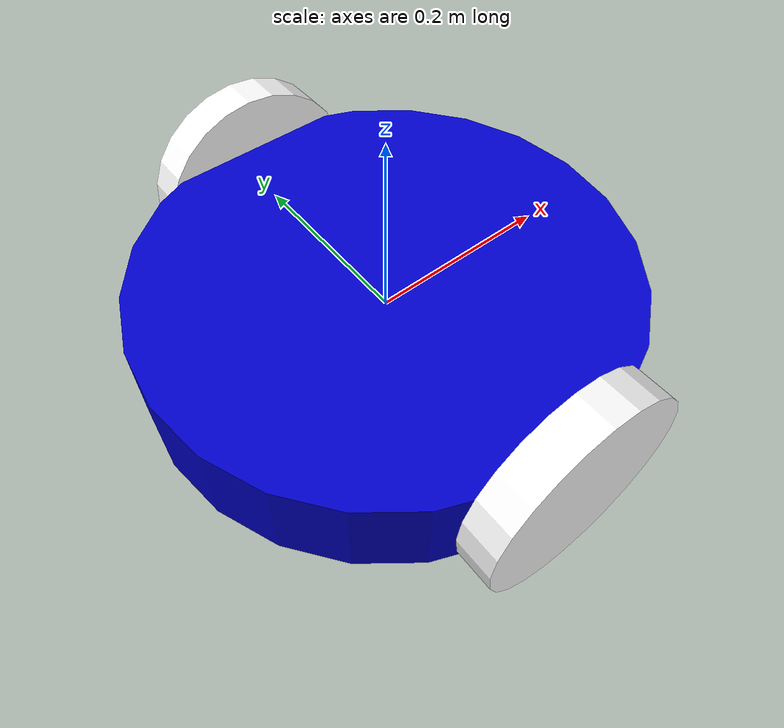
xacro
<?xml version="1.0"?>
<robot name="mp23" xmlns:xacro="http://www.ros.org/wiki/xacro">

	<xacro:property name="PI" value="3.1415926535897931"/>
	<xacro:property name="chassisHeight" value="0.1"/>
	<xacro:property name="chassisRadius" value="0.25"/>
	<xacro:property name="chassisMass" value="5"/>
	<xacro:property name="wheelHeight" value="0.04"/>
	<xacro:property name="wheelRadius" value="0.11"/>
	<xacro:property name="wheelPos" value="0.25"/>
	<xacro:property name="wheelMass" value="2.5"/>
	<xacro:property name="casterRadius" value="0.053"/>
	<xacro:property name="casterMass" value="0.5"/>

	<xacro:include filename="$(find mp23)/description/urdf/gazebo.xacro" />
	<xacro:include filename="$(find mp23)/description/urdf/materials.xacro" />
	<xacro:include filename="$(find mp23)/description/urdf/macros.xacro" />

<!--ADD CHASSIS-->																											<!--LINKS-->
	<link name="chassis">
		<pose> 0 0 0.1 0 0 0 </pose>
			<collision>
			<origin xyz="0 0 0" rpy="0 0 0"/>
			<geometry>
				<cylinder length="${chassisHeight}" radius="${chassisRadius}" />
			</geometry>
		</collision>

		<visual>
			<origin xyz="0 0 0" rpy="0 0 0"/>
			<geometry>
				<cylinder length="${chassisHeight}" radius="${chassisRadius}" />
			</geometry>
			<material name="blue"/>
		</visual>

		<inertial>
			<origin xyz="0 0 0" rpy="0 0 0"/>
			<mass value="${chassisMass}"/>
			<xacro:inertial_cylinder m="${chassisMass}" r="${chassisRadius}" h="${chassisHeight}"/>
		</inertial>
	</link>

<!--ADD WHEELS CASTER-->
	<joint name="fixed_f" type="fixed">
		<parent link="chassis"/>
		<child link="caster_wheel_f"/>
		<origin xyz="0.135 0.0 -0.047" rpy="${-PI/2} 0 0"/>
	</joint>

	<link name="caster_wheel_f">
		<collision>
			<origin xyz="0.01 0.01 0" rpy="0 0 0"/>
			<geometry>
				<sphere radius="${casterRadius}"/>
			</geometry>
		</collision>

		<visual>
			<origin xyz="0.01 0.01 0" rpy="0 0 0"/>
			<geometry>
				<sphere radius="${casterRadius}"/>
			</geometry>
			<material name="red"/>
		</visual>

		<inertial>
			<origin xyz="0.01 0.01 0" rpy="0 0 0"/>
			<mass value="${casterMass}"/>
			<xacro:inertial_sphere m="${casterMass}" r="${casterRadius}"/>
		</inertial>
		</link>

	<joint name="fixed_b" type="fixed">
		<parent link="chassis"/>
		<child link="caster_wheel_b"/>
		<origin xyz="-0.135 0.0 -0.047" rpy="${-PI/2} 0 0"/>
	</joint>

	<link name="caster_wheel_b">
		<collision>
			<origin xyz="0.01 0.01 0" rpy="0 0 0"/>
			<geometry>
				<sphere radius="${casterRadius}"/>
			</geometry>
		</collision>

		<visual>
			<origin xyz="0.01 0.01 0" rpy="0 0 0"/>
			<geometry>
				<sphere radius="${casterRadius}"/>
			</geometry>
			<material name="red"/>
		</visual>

		<inertial>
			<origin xyz="0.01 0.01 0" rpy="0 0 0"/>
			<mass value="${casterMass}"/>
			<xacro:inertial_sphere m="${casterMass}" r="${casterRadius}"/>
		</inertial>
		</link>

<!--ADD LEFT WHEEL-->
	<joint name="left_wheel_hinge" type="continuous">
		<parent link="chassis"/>
		<child link="left_wheel"/>
		<origin xyz="0 ${-0.5*2*chassisRadius} 0" rpy="0 0 0" />
		<axis xyz="0 1 0" rpy="0 0 0" />
		<limit effort="100" velocity="100"/>
		<joint_properties damping="0.0" friction="0.0"/>
	</joint>

	<link name="left_wheel">
		<collision>
			<origin xyz="0 0 0" rpy="0 ${PI/2} ${PI/2}" />
			<geometry>
				<cylinder length="${wheelHeight}" radius="${wheelRadius}"/>
			</geometry>
		</collision>

		<visual>
			<origin xyz="0 0 0" rpy="0 ${PI/2} ${PI/2}" />
			<geometry>
				<cylinder length="${wheelHeight}" radius="${wheelRadius}"/>
			</geometry>
			<material name="white"/>
		</visual>

		<inertial>
			<origin xyz="0 0 0" rpy="0 ${PI/2} ${PI/2}" />
			<mass value="${wheelMass}"/>
			<xacro:inertial_cylinder m="${wheelMass}" r="${wheelRadius}" h="${wheelHeight}"/>
		</inertial>
	</link>

	<transmission name="left_trans">
		<type>transmission_interface/SimpleTransmission</type>
		<joint name="left_wheel_hinge">
			<hardwareInterface>EffortJointInterface</hardwareInterface>
		</joint>

		<actuator name="leftMotor">
			<hardwareInterface>EffortJointInterface</hardwareInterface>
			<mechanicalReduction>10</mechanicalReduction>
		</actuator>
	</transmission>

<!--ADD RIGHT WHEEL-->
	<joint name="right_wheel_hinge" type="continuous">
		<parent link="chassis"/>
		<child link="right_wheel"/>
		<origin xyz="0 ${0.5 *2*chassisRadius} 0" rpy="0 0 0" />
		<axis xyz="0 1 0" rpy="0 0 0" />
		<limit effort="100" velocity="100"/>
		<joint_properties damping="0.0" friction="0.0"/>
	</joint>

	<link name="right_wheel">
		<collision>
			<origin xyz="0 0 0" rpy="0 ${PI/2} ${PI/2}" />
			<geometry>
				<cylinder length="${wheelHeight}" radius="${wheelRadius}"/>
			</geometry>
		</collision>

		<visual>
			<origin xyz="0 0 0" rpy="0 ${PI/2} ${PI/2}" />
			<geometry>
				<cylinder length="${wheelHeight}" radius="${wheelRadius}"/>
			</geometry>
			<material name="white"/>
		</visual>

		<inertial>
			<origin xyz="0 0 0" rpy="0 ${PI/2} ${PI/2}" />
			<mass value="${wheelMass}"/>
			<xacro:inertial_cylinder m="${wheelMass}" r="${wheelRadius}" h="${wheelHeight}"/>
		</inertial>
	</link>

	<transmission name="right_trans">
		<type>transmission_interface/SimpleTransmission</type>
		<joint name="right_wheel_hinge">
			<hardwareInterface>EffortJointInterface</hardwareInterface>
		</joint>

		<actuator name="rightMotor">
			<hardwareInterface>EffortJointInterface</hardwareInterface>
			<mechanicalReduction>10</mechanicalReduction>
		</actuator>
	</transmission>

</robot>

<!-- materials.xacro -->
<robot xmlns:xacro="http://www.ros.org/wiki/xacro">
    <material name="black">
        <color rgba="0.0 0.0 0.0 1.0"/>
    </material>

    <material name="blue">
        <color rgba="0.0 0.0 0.8 1.0"/>
    </material>

    <material name="green">
        <color rgba="0.0 0.8 0.0 1.0"/>
    </material>

    <material name="red">
        <color rgba="0.8 0.0 0.0 1.0"/>
    </material>

    <material name="grey">
        <color rgba="0.2 0.2 0.2 1.0"/>
    </material>

    <material name="orange">
        <color rgba="${255/255} ${108/255} ${10/255} 1.0"/>
    </material>

    <material name="white">
        <color rgba="1.0 1.0 1.0 1.0"/>
    </material>
</robot>

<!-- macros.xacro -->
<robot xmlns:xacro="http://www.ros.org/wiki/xacro">

    <xacro:macro name="inertial_cylinder" params="m r h">
        <inertia ixx="${m*(3*r*r+h*h)/12}" ixy = "0" ixz = "0"
        iyy="${m*(3*r*r+h*h)/12}" iyz = "0"
        izz="${m*r*r/2}"
        />

    </xacro:macro>

    <xacro:macro name="inertial_box" params="m x y z">
        <inertia ixx="${m*(y*y+z*z)/12}" ixy = "0" ixz = "0"
        iyy="${m*(x*x+z*z)/12}" iyz = "0"
        izz="${m*(x*x+z*z)/12}"
        />
    </xacro:macro>

    <xacro:macro name="inertial_sphere" params="m r">
        <inertia ixx="${2*m*r*r/5}" ixy = "0" ixz = "0"
        iyy="${2*m*r*r/5}" iyz = "0"
        izz="${2*m*r*r/5}"
        />
    </xacro:macro>
</robot>
